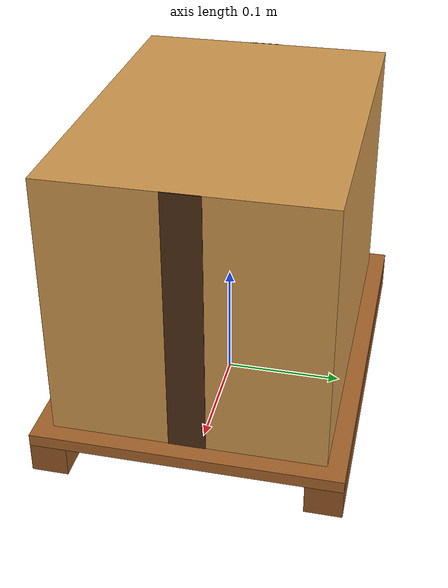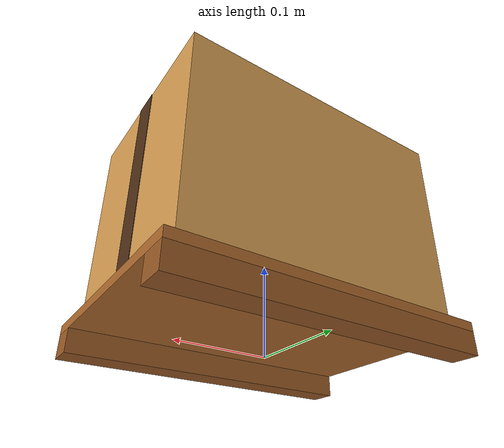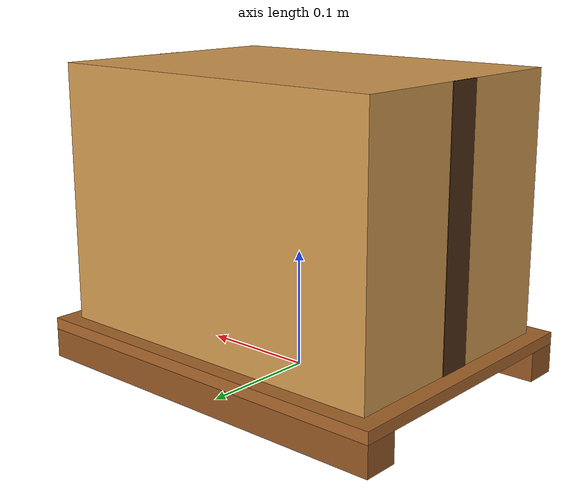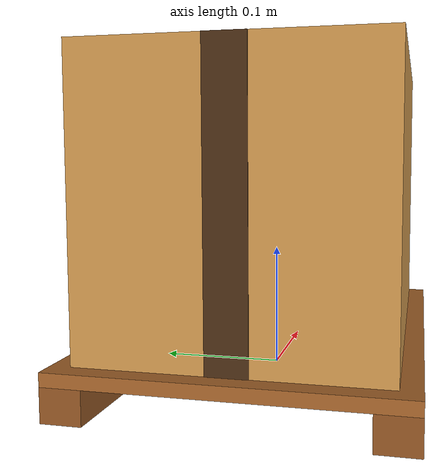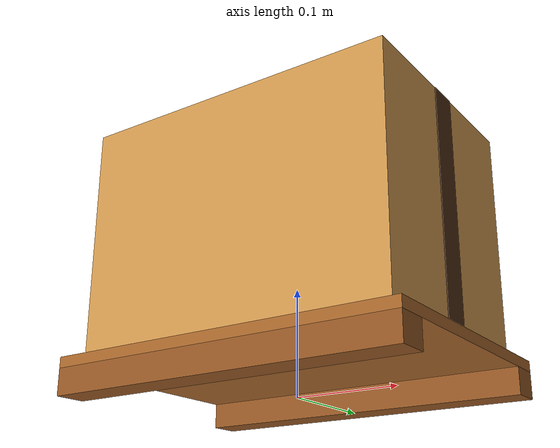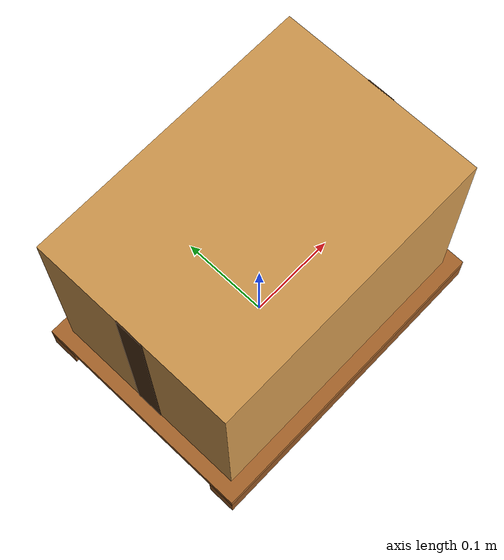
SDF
<?xml version="1.0"?>
<sdf version="1.9">
  <model name="warehouse_pallet_box">
    <static>false</static>
    <allow_auto_disable>true</allow_auto_disable>

    <link name="loaded_pallet">
      <inertial>
        <pose>0 0 0.145 0 0 0</pose>
        <mass>1.0</mass>
        <inertia>
          <ixx>0.0638</ixx>
          <iyy>0.0903</iyy>
          <izz>0.0891</izz>
          <ixy>0</ixy>
          <ixz>0</ixz>
          <iyz>0</iyz>
        </inertia>
      </inertial>

      <!-- 10 mm deck, from z=25 to z=35 mm. -->
      <collision name="pallet_deck_collision">
        <pose>0 0 0.030 0 0 0</pose>
        <geometry>
          <box><size>0.340 0.250 0.010</size></box>
        </geometry>
        <surface>
          <friction>
            <ode><mu>0.8</mu><mu2>0.8</mu2></ode>
          </friction>
        </surface>
      </collision>
      <visual name="pallet_deck_visual">
        <pose>0 0 0.030 0 0 0</pose>
        <geometry>
          <box><size>0.340 0.250 0.010</size></box>
        </geometry>
        <material>
          <ambient>0.55 0.32 0.12 1</ambient>
          <diffuse>0.66 0.40 0.17 1</diffuse>
        </material>
      </visual>

      <!-- 25 mm runners at the outer edges; inner faces are y=+/-95 mm. -->
      <collision name="left_runner_collision">
        <pose>0 0.110 0.0125 0 0 0</pose>
        <geometry>
          <box><size>0.340 0.030 0.025</size></box>
        </geometry>
        <surface>
          <friction>
            <ode><mu>0.8</mu><mu2>0.8</mu2></ode>
          </friction>
        </surface>
      </collision>
      <visual name="left_runner_visual">
        <pose>0 0.110 0.0125 0 0 0</pose>
        <geometry>
          <box><size>0.340 0.030 0.025</size></box>
        </geometry>
        <material>
          <ambient>0.48 0.27 0.10 1</ambient>
          <diffuse>0.58 0.34 0.14 1</diffuse>
        </material>
      </visual>
      <collision name="right_runner_collision">
        <pose>0 -0.110 0.0125 0 0 0</pose>
        <geometry>
          <box><size>0.340 0.030 0.025</size></box>
        </geometry>
        <surface>
          <friction>
            <ode><mu>0.8</mu><mu2>0.8</mu2></ode>
          </friction>
        </surface>
      </collision>
      <visual name="right_runner_visual">
        <pose>0 -0.110 0.0125 0 0 0</pose>
        <geometry>
          <box><size>0.340 0.030 0.025</size></box>
        </geometry>
        <material>
          <ambient>0.48 0.27 0.10 1</ambient>
          <diffuse>0.58 0.34 0.14 1</diffuse>
        </material>
      </visual>

      <!-- Cargo: 310 mm deep, 220 mm wide and 220 mm high. -->
      <collision name="box_collision">
        <pose>0 0 0.145 0 0 0</pose>
        <geometry>
          <box><size>0.310 0.220 0.220</size></box>
        </geometry>
        <surface>
          <friction>
            <ode><mu>0.7</mu><mu2>0.7</mu2></ode>
          </friction>
        </surface>
      </collision>
      <visual name="box_visual">
        <pose>0 0 0.145 0 0 0</pose>
        <geometry>
          <box><size>0.310 0.220 0.220</size></box>
        </geometry>
        <material>
          <ambient>0.70 0.50 0.25 1</ambient>
          <diffuse>0.82 0.60 0.31 1</diffuse>
        </material>
      </visual>

      <!-- Dark bands make the box orientation visible from both aisles. -->
      <visual name="box_front_band_visual">
        <pose>-0.1551 0 0.145 0 0 0</pose>
        <geometry>
          <box><size>0.001 0.030 0.220</size></box>
        </geometry>
        <material>
          <ambient>0.24 0.14 0.06 1</ambient>
          <diffuse>0.30 0.18 0.08 1</diffuse>
        </material>
      </visual>
      <visual name="box_back_band_visual">
        <pose>0.1551 0 0.145 0 0 0</pose>
        <geometry>
          <box><size>0.001 0.030 0.220</size></box>
        </geometry>
        <material>
          <ambient>0.24 0.14 0.06 1</ambient>
          <diffuse>0.30 0.18 0.08 1</diffuse>
        </material>
      </visual>
    </link>
  </model>
</sdf>
